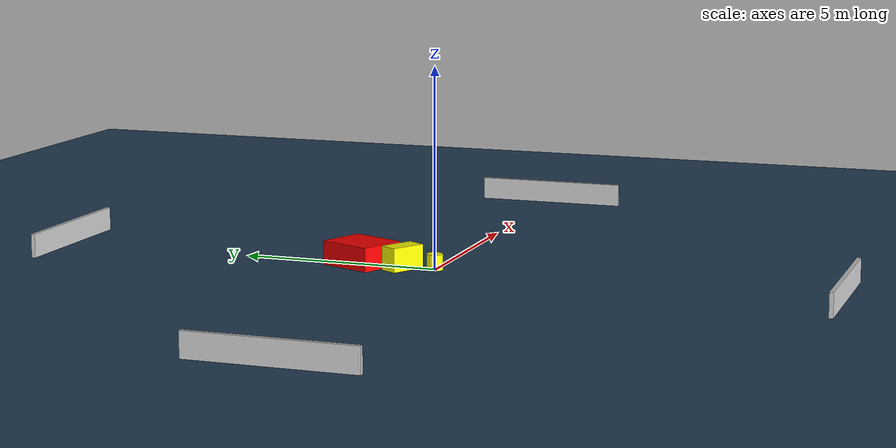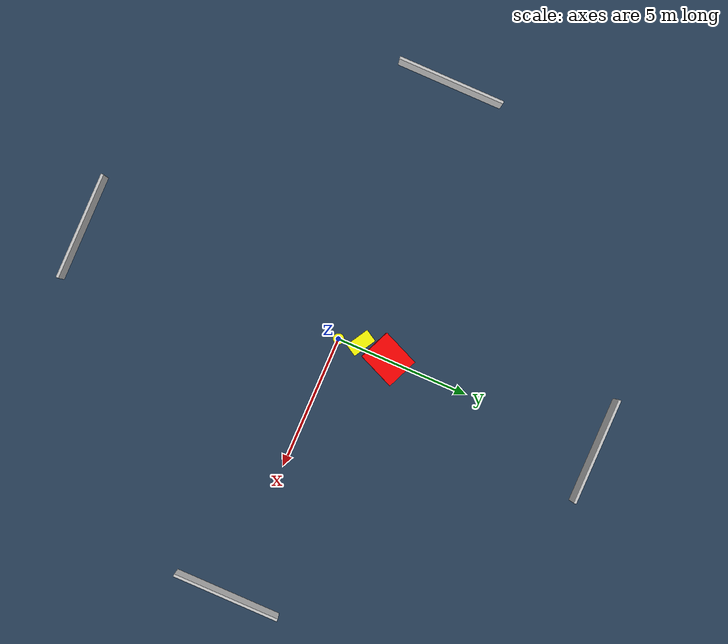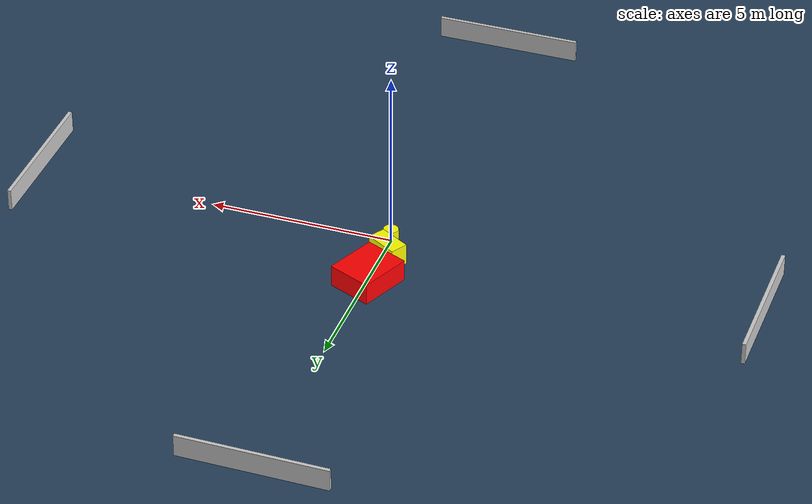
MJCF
<?xml version="1.0" ?>
<mujoco model="generated_environment">
  <option timestep="0.01" integrator="RK4" cone="elliptic"/>
  <default>
    <geom density="1"/>
  </default>
  <asset>
    <texture builtin="gradient" height="3072" name="skybox" rgb1="0.3 0.5 0.7" rgb2="0 0 0" type="skybox" width="512"/>
    <texture builtin="checker" height="300" name="groundplane" rgb1="0.2 0.3 0.4" rgb2="0.1 0.2 0.3" type="2d" width="300"/>
    <material name="groundplane" reflectance="0.2" texrepeat="5 5" texture="groundplane"/>
  </asset>
  <worldbody>
    <light dir="0 0 -1" directional="true" pos="0 0 1.5"/>
    <geom condim="3" friction="0.5 0.005 0.001" material="groundplane" name="floor" pos="0 0 0" size="0 0 0.05" type="plane"/>
    <body name="walls">
      <geom name="wall_1" condim="4" pos="-10.0 0.0 0.3" rgba="0.800000011920929 0.800000011920929 0.800000011920929 1.0" size="0.05 2.0 0.3" type="box"/>
      <geom name="wall_2" condim="4" pos="10.0 0.0 0.3" rgba="0.800000011920929 0.800000011920929 0.800000011920929 1.0" size="0.05 2.0 0.3" type="box"/>
      <geom name="wall_3" condim="4" pos="0.0 -10.0 0.3" rgba="0.800000011920929 0.800000011920929 0.800000011920929 1.0" size="2.0 0.05 0.3" type="box"/>
      <geom name="wall_4" condim="4" pos="0.0 10.0 0.3" rgba="0.800000011920929 0.800000011920929 0.800000011920929 1.0" size="2.0 0.05 0.3" type="box"/>
    </body>
    <body name="robot">
      <joint name="joint_x" type="slide" pos="0 0 0" axis="1 0 0"/>
      <joint name="joint_y" type="slide" pos="0 0 0" axis="0 1 0"/>
      <geom name="robot" type="cylinder" pos="0.0 0.0 0.2" size="0.2 0.2 0.0" mass="5.0" friction="1.0 0.005 0.0001" condim="4" rgba="1.0 1.0 0.0 1.0"/>
    </body>
    <body name="obstacle_1_movable">
      <geom name="obstacle_1_movable" condim="4" pos="-0.1827627489468748 0.7815995055434612 0.3" euler="0 0 329.6286822577699" friction="0.0 0.005 0.001" rgba="1.0 1.0 0.0 1.0" size="0.4542941412015878 0.2427707484271136 0.3" type="box" mass="0.1"/>
      <joint type="free"/>
    </body>
    <body name="obstacle_2_static">
      <geom name="obstacle_2_static" condim="4" pos="-0.03968123587543371 1.9078613271593428 0.3" euler="0 0 246.96669768808513" friction="0.0 0.005 0.001" rgba="1.0 0.0 0.0 1.0" size="0.7212427722251926 0.6133189952175355 0.3" type="box"/>
    </body>
  </worldbody>
  <actuator>
    <motor name="actuator_x" joint="joint_x" gear="1" ctrlrange="-1 1"/>
    <motor name="actuator_y" joint="joint_y" gear="1" ctrlrange="-1 1"/>
  </actuator>
</mujoco>
